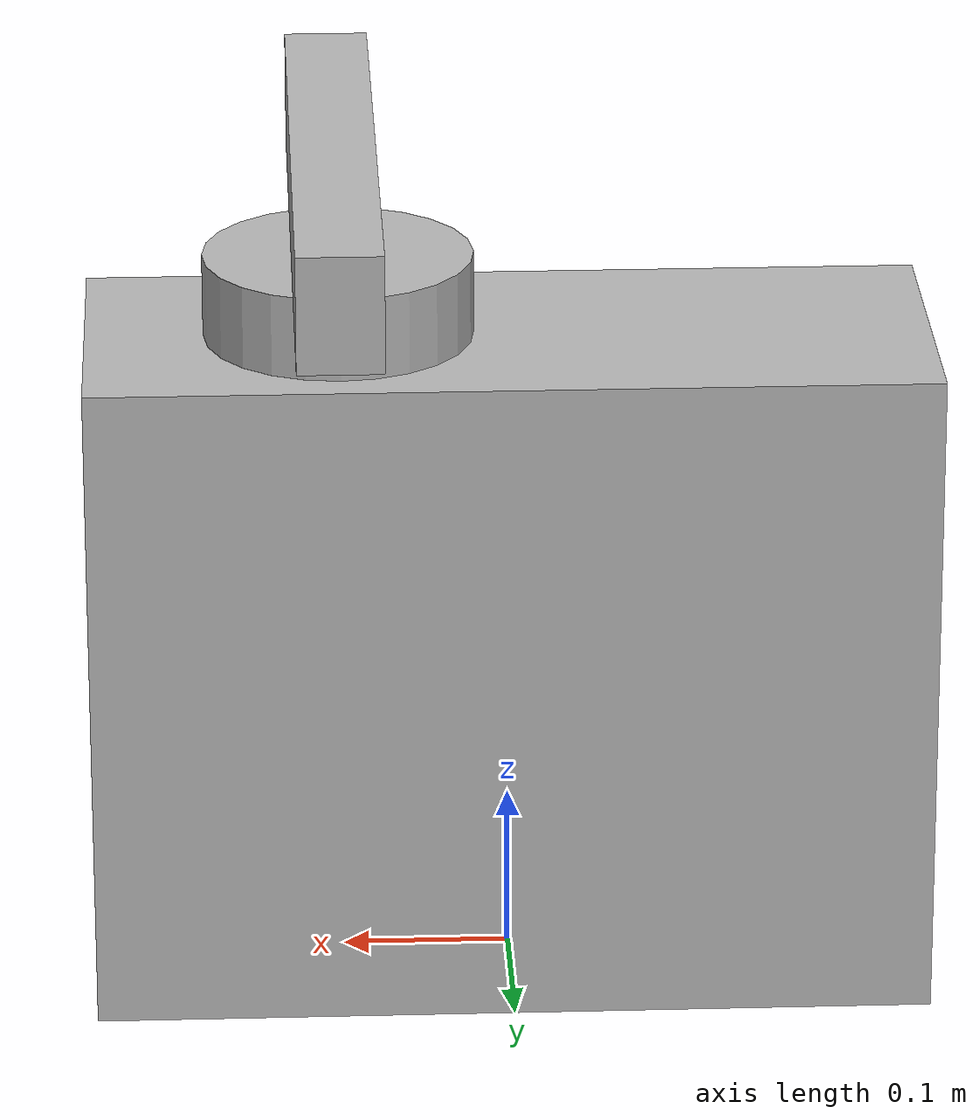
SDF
<?xml version='1.0'?>
<sdf version='1.4'>
  <model name="simple_servo">
    <static>false</static>
    <link name='chassis'>
      <pose>0 0 0.2 0 0 0</pose>
      <inertial>
        <mass>10</mass>
      </inertial>
      <!-- Main body shape and collision -->
      <collision name='collision'>
        <geometry>
          <box>
            <size>0.5 0.2 0.4</size>
          </box>
        </geometry>
      </collision>

      <visual name='visual'>
        <geometry>
          <box>
            <size>0.5 0.2 0.4</size>
          </box>
        </geometry>
      </visual>

      <!-- Holder shape and collision -->
      <collision name='holder_collision'>
        <pose>0.1 0 0.225 0 0 0</pose>
        <geometry>
          <cylinder>
            <radius>0.08</radius>
            <length>0.05</length>
          </cylinder>
        </geometry>
      </collision>

      <visual name='holder_visual'>
        <pose>0.1 0 0.225 0 0 0</pose>
        <geometry>
          <cylinder>
            <radius>0.08</radius>
            <length>0.05</length>
          </cylinder>
        </geometry>
      </visual>
    </link>

    <!-- Moving servo block -->
    <link name="servo_sweeper">
      <pose>0.1025 0 0.485 0 0 0</pose>
      <collision name='collision'>
        <geometry>
          <box>
            <size>0.05 0.4 0.07</size>
          </box>
        </geometry>
      </collision>

      <visual name='visual'>
        <geometry>
          <box>
            <size>0.05 0.4 0.07</size>
          </box>
        </geometry>
      </visual>
    </link>

    <!-- Make the sweeper move -->
    <joint type="revolute" name="servo_sweeper_hinge">
      <pose>0 0 0 0 0 0</pose>
      <child>servo_sweeper</child>
      <parent>chassis</parent>
      <axis>
        <limit>
          <lower>-1.57</lower>
          <upper>1.57</upper>
        </limit>
        <xyz>0 0 1</xyz>
      </axis>
    </joint>

  </model>
</sdf>
